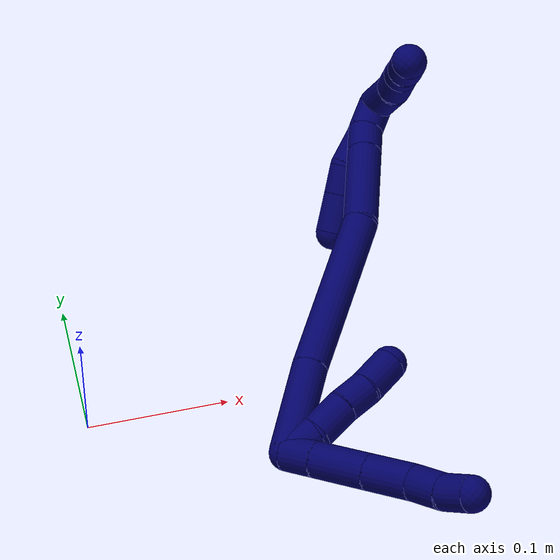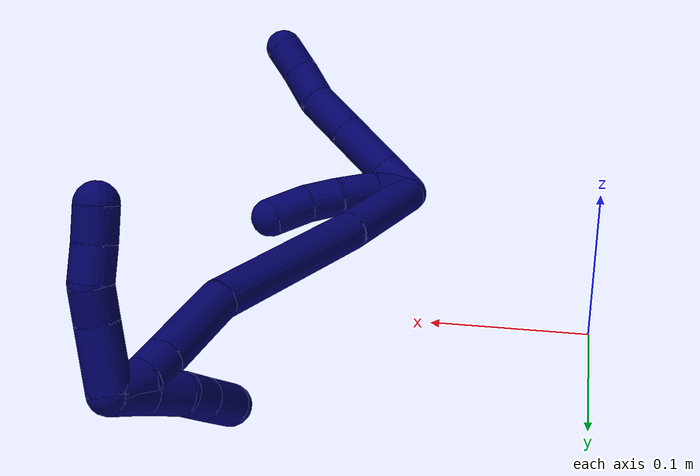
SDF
<sdf version="1.7">
 <world name="default">
  <model name="7">
   <static>0</static>
   <link name="7">
    <collision name="collision-cylinder-e_1_2_8">
     <pose>-0.005884 -0.009418 0.004696 1.10828 -0.50981 -0.319743</pose>
     <geometry><cylinder><radius>0.0125</radius><length>0.024115</length></cylinder></geometry>
     <surface>
      <friction><ode><mu>1.16</mu><mu2>1.16</mu2><slip1>0</slip1><slip2>0</slip2></ode></friction>
      <contact><ode><kp>1e+06</kp><kd>1</kd><max_vel>0</max_vel><min_depth>0.001</min_depth></ode></contact>
     </surface>
    </collision>
    <visual name="visual-cylinder-e_1_2_8">
     <pose>-0.005884 -0.009418 0.004696 1.10828 -0.50981 -0.319743</pose>
     <geometry><cylinder><radius>0.0125</radius><length>0.024115</length></cylinder></geometry>
     <material><ambient>0.003922 0 0.403922 1</ambient></material>
    </visual>
    <collision name="collision-cylinder-e_2_8_9">
     <pose>-0.021703 -0.035291 0.017568 1.10963 -0.49567 -0.311103</pose>
     <geometry><cylinder><radius>0.0125</radius><length>0.041774</length></cylinder></geometry>
     <surface>
      <friction><ode><mu>1.16</mu><mu2>1.16</mu2><slip1>0</slip1><slip2>0</slip2></ode></friction>
      <contact><ode><kp>1e+06</kp><kd>1</kd><max_vel>0</max_vel><min_depth>0.001</min_depth></ode></contact>
     </surface>
    </collision>
    <visual name="visual-cylinder-e_2_8_9">
     <pose>-0.021703 -0.035291 0.017568 1.10963 -0.49567 -0.311103</pose>
     <geometry><cylinder><radius>0.0125</radius><length>0.041774</length></cylinder></geometry>
     <material><ambient>0.003922 0 0.403922 1</ambient></material>
    </visual>
    <collision name="collision-cylinder-e_3_9_10">
     <pose>-0.039943 -0.065477 0.032586 1.10857 -0.496207 -0.311089</pose>
     <geometry><cylinder><radius>0.0125</radius><length>0.034894</length></cylinder></geometry>
     <surface>
      <friction><ode><mu>1.16</mu><mu2>1.16</mu2><slip1>0</slip1><slip2>0</slip2></ode></friction>
      <contact><ode><kp>1e+06</kp><kd>1</kd><max_vel>0</max_vel><min_depth>0.001</min_depth></ode></contact>
     </surface>
    </collision>
    <visual name="visual-cylinder-e_3_9_10">
     <pose>-0.039943 -0.065477 0.032586 1.10857 -0.496207 -0.311089</pose>
     <geometry><cylinder><radius>0.0125</radius><length>0.034894</length></cylinder></geometry>
     <material><ambient>0.003922 0 0.403922 1</ambient></material>
    </visual>
    <collision name="collision-cylinder-e_4_10_11">
     <pose>-0.05671 -0.088568 0.043128 1.19424 -0.699093 -0.48589</pose>
     <geometry><cylinder><radius>0.0125</radius><length>0.026293</length></cylinder></geometry>
     <surface>
      <friction><ode><mu>1.16</mu><mu2>1.16</mu2><slip1>0</slip1><slip2>0</slip2></ode></friction>
      <contact><ode><kp>1e+06</kp><kd>1</kd><max_vel>0</max_vel><min_depth>0.001</min_depth></ode></contact>
     </surface>
    </collision>
    <visual name="visual-cylinder-e_4_10_11">
     <pose>-0.05671 -0.088568 0.043128 1.19424 -0.699093 -0.48589</pose>
     <geometry><cylinder><radius>0.0125</radius><length>0.026293</length></cylinder></geometry>
     <material><ambient>0.003922 0 0.403922 1</ambient></material>
    </visual>
    <collision name="collision-cylinder-e_5_11_6">
     <pose>-0.072663 -0.104983 0.051869 0.950562 -0.71254 -0.378455</pose>
     <geometry><cylinder><radius>0.0125</radius><length>0.022924</length></cylinder></geometry>
     <surface>
      <friction><ode><mu>1.16</mu><mu2>1.16</mu2><slip1>0</slip1><slip2>0</slip2></ode></friction>
      <contact><ode><kp>1e+06</kp><kd>1</kd><max_vel>0</max_vel><min_depth>0.001</min_depth></ode></contact>
     </surface>
    </collision>
    <visual name="visual-cylinder-e_5_11_6">
     <pose>-0.072663 -0.104983 0.051869 0.950562 -0.71254 -0.378455</pose>
     <geometry><cylinder><radius>0.0125</radius><length>0.022924</length></cylinder></geometry>
     <material><ambient>0.003922 0 0.403922 1</ambient></material>
    </visual>
    <collision name="collision-cylinder-e_1_2_12">
     <pose>0.001736 -0.003031 0.011443 0.258939 0.14565 0.018996</pose>
     <geometry><cylinder><radius>0.0125</radius><length>0.023929</length></cylinder></geometry>
     <surface>
      <friction><ode><mu>1.16</mu><mu2>1.16</mu2><slip1>0</slip1><slip2>0</slip2></ode></friction>
      <contact><ode><kp>1e+06</kp><kd>1</kd><max_vel>0</max_vel><min_depth>0.001</min_depth></ode></contact>
     </surface>
    </collision>
    <visual name="visual-cylinder-e_1_2_12">
     <pose>0.001736 -0.003031 0.011443 0.258939 0.14565 0.018996</pose>
     <geometry><cylinder><radius>0.0125</radius><length>0.023929</length></cylinder></geometry>
     <material><ambient>0.003922 0 0.403922 1</ambient></material>
    </visual>
    <collision name="collision-cylinder-e_2_12_13">
     <pose>0.007971 -0.006863 0.03548 0.06353 0.342389 0.010987</pose>
     <geometry><cylinder><radius>0.0125</radius><length>0.026793</length></cylinder></geometry>
     <surface>
      <friction><ode><mu>1.16</mu><mu2>1.16</mu2><slip1>0</slip1><slip2>0</slip2></ode></friction>
      <contact><ode><kp>1e+06</kp><kd>1</kd><max_vel>0</max_vel><min_depth>0.001</min_depth></ode></contact>
     </surface>
    </collision>
    <visual name="visual-cylinder-e_2_12_13">
     <pose>0.007971 -0.006863 0.03548 0.06353 0.342389 0.010987</pose>
     <geometry><cylinder><radius>0.0125</radius><length>0.026793</length></cylinder></geometry>
     <material><ambient>0.003922 0 0.403922 1</ambient></material>
    </visual>
    <collision name="collision-cylinder-e_3_13_14">
     <pose>0.016912 -0.009349 0.057992 0.168184 0.415903 0.035567</pose>
     <geometry><cylinder><radius>0.0125</radius><length>0.021999</length></cylinder></geometry>
     <surface>
      <friction><ode><mu>1.16</mu><mu2>1.16</mu2><slip1>0</slip1><slip2>0</slip2></ode></friction>
      <contact><ode><kp>1e+06</kp><kd>1</kd><max_vel>0</max_vel><min_depth>0.001</min_depth></ode></contact>
     </surface>
    </collision>
    <visual name="visual-cylinder-e_3_13_14">
     <pose>0.016912 -0.009349 0.057992 0.168184 0.415903 0.035567</pose>
     <geometry><cylinder><radius>0.0125</radius><length>0.021999</length></cylinder></geometry>
     <material><ambient>0.003922 0 0.403922 1</ambient></material>
    </visual>
    <collision name="collision-cylinder-e_4_14_5">
     <pose>0.028167 -0.01129 0.079727 0.021766 0.522798 0.005823</pose>
     <geometry><cylinder><radius>0.0125</radius><length>0.02728</length></cylinder></geometry>
     <surface>
      <friction><ode><mu>1.16</mu><mu2>1.16</mu2><slip1>0</slip1><slip2>0</slip2></ode></friction>
      <contact><ode><kp>1e+06</kp><kd>1</kd><max_vel>0</max_vel><min_depth>0.001</min_depth></ode></contact>
     </surface>
    </collision>
    <visual name="visual-cylinder-e_4_14_5">
     <pose>0.028167 -0.01129 0.079727 0.021766 0.522798 0.005823</pose>
     <geometry><cylinder><radius>0.0125</radius><length>0.02728</length></cylinder></geometry>
     <material><ambient>0.003922 0 0.403922 1</ambient></material>
    </visual>
    <collision name="collision-cylinder-e_1_2_15">
     <pose>0.01545 0.014047 0.027363 -0.474286 0.465502 -0.114459</pose>
     <geometry><cylinder><radius>0.0125</radius><length>0.068841</length></cylinder></geometry>
     <surface>
      <friction><ode><mu>1.16</mu><mu2>1.16</mu2><slip1>0</slip1><slip2>0</slip2></ode></friction>
      <contact><ode><kp>1e+06</kp><kd>1</kd><max_vel>0</max_vel><min_depth>0.001</min_depth></ode></contact>
     </surface>
    </collision>
    <visual name="visual-cylinder-e_1_2_15">
     <pose>0.01545 0.014047 0.027363 -0.474286 0.465502 -0.114459</pose>
     <geometry><cylinder><radius>0.0125</radius><length>0.068841</length></cylinder></geometry>
     <material><ambient>0.003922 0 0.403922 1</ambient></material>
    </visual>
    <collision name="collision-cylinder-e_2_15_16">
     <pose>0.057004 0.049662 0.106133 -0.39724 0.437914 -0.089517</pose>
     <geometry><cylinder><radius>0.0125</radius><length>0.123113</length></cylinder></geometry>
     <surface>
      <friction><ode><mu>1.16</mu><mu2>1.16</mu2><slip1>0</slip1><slip2>0</slip2></ode></friction>
      <contact><ode><kp>1e+06</kp><kd>1</kd><max_vel>0</max_vel><min_depth>0.001</min_depth></ode></contact>
     </surface>
    </collision>
    <visual name="visual-cylinder-e_2_15_16">
     <pose>0.057004 0.049662 0.106133 -0.39724 0.437914 -0.089517</pose>
     <geometry><cylinder><radius>0.0125</radius><length>0.123113</length></cylinder></geometry>
     <material><ambient>0.003922 0 0.403922 1</ambient></material>
    </visual>
    <collision name="collision-cylinder-e_3_16_17">
     <pose>0.099397 0.088216 0.179133 -0.666532 0.535205 -0.189262</pose>
     <geometry><cylinder><radius>0.0125</radius><length>0.063881</length></cylinder></geometry>
     <surface>
      <friction><ode><mu>1.16</mu><mu2>1.16</mu2><slip1>0</slip1><slip2>0</slip2></ode></friction>
      <contact><ode><kp>1e+06</kp><kd>1</kd><max_vel>0</max_vel><min_depth>0.001</min_depth></ode></contact>
     </surface>
    </collision>
    <visual name="visual-cylinder-e_3_16_17">
     <pose>0.099397 0.088216 0.179133 -0.666532 0.535205 -0.189262</pose>
     <geometry><cylinder><radius>0.0125</radius><length>0.063881</length></cylinder></geometry>
     <material><ambient>0.003922 0 0.403922 1</ambient></material>
    </visual>
    <collision name="collision-cylinder-e_4_17_18">
     <pose>0.12096 0.110711 0.207725 -0.666963 0.534524 -0.189142</pose>
     <geometry><cylinder><radius>0.0125</radius><length>0.0207</length></cylinder></geometry>
     <surface>
      <friction><ode><mu>1.16</mu><mu2>1.16</mu2><slip1>0</slip1><slip2>0</slip2></ode></friction>
      <contact><ode><kp>1e+06</kp><kd>1</kd><max_vel>0</max_vel><min_depth>0.001</min_depth></ode></contact>
     </surface>
    </collision>
    <visual name="visual-cylinder-e_4_17_18">
     <pose>0.12096 0.110711 0.207725 -0.666963 0.534524 -0.189142</pose>
     <geometry><cylinder><radius>0.0125</radius><length>0.0207</length></cylinder></geometry>
     <material><ambient>0.003922 0 0.403922 1</ambient></material>
    </visual>
    <collision name="collision-cylinder-e_5_18_1">
     <pose>0.130322 0.120038 0.225036 -0.354465 0.356065 -0.064435</pose>
     <geometry><cylinder><radius>0.0125</radius><length>0.023465</length></cylinder></geometry>
     <surface>
      <friction><ode><mu>1.16</mu><mu2>1.16</mu2><slip1>0</slip1><slip2>0</slip2></ode></friction>
      <contact><ode><kp>1e+06</kp><kd>1</kd><max_vel>0</max_vel><min_depth>0.001</min_depth></ode></contact>
     </surface>
    </collision>
    <visual name="visual-cylinder-e_5_18_1">
     <pose>0.130322 0.120038 0.225036 -0.354465 0.356065 -0.064435</pose>
     <geometry><cylinder><radius>0.0125</radius><length>0.023465</length></cylinder></geometry>
     <material><ambient>0.003922 0 0.403922 1</ambient></material>
    </visual>
    <collision name="collision-cylinder-e_1_1_19">
     <pose>0.133789 0.119683 0.223072 2.81404 -0.04799 -0.28843</pose>
     <geometry><cylinder><radius>0.0125</radius><length>0.025963</length></cylinder></geometry>
     <surface>
      <friction><ode><mu>1.16</mu><mu2>1.16</mu2><slip1>0</slip1><slip2>0</slip2></ode></friction>
      <contact><ode><kp>1e+06</kp><kd>1</kd><max_vel>0</max_vel><min_depth>0.001</min_depth></ode></contact>
     </surface>
    </collision>
    <visual name="visual-cylinder-e_1_1_19">
     <pose>0.133789 0.119683 0.223072 2.81404 -0.04799 -0.28843</pose>
     <geometry><cylinder><radius>0.0125</radius><length>0.025963</length></cylinder></geometry>
     <material><ambient>0.003922 0 0.403922 1</ambient></material>
    </visual>
    <collision name="collision-cylinder-e_2_19_20">
     <pose>0.132793 0.112819 0.198837 2.92014 -0.030484 -0.272514</pose>
     <geometry><cylinder><radius>0.0125</radius><length>0.024524</length></cylinder></geometry>
     <surface>
      <friction><ode><mu>1.16</mu><mu2>1.16</mu2><slip1>0</slip1><slip2>0</slip2></ode></friction>
      <contact><ode><kp>1e+06</kp><kd>1</kd><max_vel>0</max_vel><min_depth>0.001</min_depth></ode></contact>
     </surface>
    </collision>
    <visual name="visual-cylinder-e_2_19_20">
     <pose>0.132793 0.112819 0.198837 2.92014 -0.030484 -0.272514</pose>
     <geometry><cylinder><radius>0.0125</radius><length>0.024524</length></cylinder></geometry>
     <material><ambient>0.003922 0 0.403922 1</ambient></material>
    </visual>
    <collision name="collision-cylinder-e_3_20_21">
     <pose>0.134081 0.105191 0.17758 2.65366 0.156587 0.610638</pose>
     <geometry><cylinder><radius>0.0125</radius><length>0.021318</length></cylinder></geometry>
     <surface>
      <friction><ode><mu>1.16</mu><mu2>1.16</mu2><slip1>0</slip1><slip2>0</slip2></ode></friction>
      <contact><ode><kp>1e+06</kp><kd>1</kd><max_vel>0</max_vel><min_depth>0.001</min_depth></ode></contact>
     </surface>
    </collision>
    <visual name="visual-cylinder-e_3_20_21">
     <pose>0.134081 0.105191 0.17758 2.65366 0.156587 0.610638</pose>
     <geometry><cylinder><radius>0.0125</radius><length>0.021318</length></cylinder></geometry>
     <material><ambient>0.003922 0 0.403922 1</ambient></material>
    </visual>
    <collision name="collision-cylinder-e_4_21_4">
     <pose>0.137799 0.093827 0.155903 2.66258 0.14629 0.583045</pose>
     <geometry><cylinder><radius>0.0125</radius><length>0.028194</length></cylinder></geometry>
     <surface>
      <friction><ode><mu>1.16</mu><mu2>1.16</mu2><slip1>0</slip1><slip2>0</slip2></ode></friction>
      <contact><ode><kp>1e+06</kp><kd>1</kd><max_vel>0</max_vel><min_depth>0.001</min_depth></ode></contact>
     </surface>
    </collision>
    <visual name="visual-cylinder-e_4_21_4">
     <pose>0.137799 0.093827 0.155903 2.66258 0.14629 0.583045</pose>
     <geometry><cylinder><radius>0.0125</radius><length>0.028194</length></cylinder></geometry>
     <material><ambient>0.003922 0 0.403922 1</ambient></material>
    </visual>
    <collision name="collision-cylinder-e_1_1_22">
     <pose>0.117059 0.120566 0.241761 0.473877 -1.17718 -0.319626</pose>
     <geometry><cylinder><radius>0.0125</radius><length>0.037579</length></cylinder></geometry>
     <surface>
      <friction><ode><mu>1.16</mu><mu2>1.16</mu2><slip1>0</slip1><slip2>0</slip2></ode></friction>
      <contact><ode><kp>1e+06</kp><kd>1</kd><max_vel>0</max_vel><min_depth>0.001</min_depth></ode></contact>
     </surface>
    </collision>
    <visual name="visual-cylinder-e_1_1_22">
     <pose>0.117059 0.120566 0.241761 0.473877 -1.17718 -0.319626</pose>
     <geometry><cylinder><radius>0.0125</radius><length>0.037579</length></cylinder></geometry>
     <material><ambient>0.003922 0 0.403922 1</ambient></material>
    </visual>
    <collision name="collision-cylinder-e_2_22_23">
     <pose>0.090131 0.117302 0.252298 -0.006001 -1.16404 0.003949</pose>
     <geometry><cylinder><radius>0.0125</radius><length>0.020852</length></cylinder></geometry>
     <surface>
      <friction><ode><mu>1.16</mu><mu2>1.16</mu2><slip1>0</slip1><slip2>0</slip2></ode></friction>
      <contact><ode><kp>1e+06</kp><kd>1</kd><max_vel>0</max_vel><min_depth>0.001</min_depth></ode></contact>
     </surface>
    </collision>
    <visual name="visual-cylinder-e_2_22_23">
     <pose>0.090131 0.117302 0.252298 -0.006001 -1.16404 0.003949</pose>
     <geometry><cylinder><radius>0.0125</radius><length>0.020852</length></cylinder></geometry>
     <material><ambient>0.003922 0 0.403922 1</ambient></material>
    </visual>
    <collision name="collision-cylinder-e_3_23_24">
     <pose>0.07003 0.116181 0.257446 0.842074 -1.42592 -0.738882</pose>
     <geometry><cylinder><radius>0.0125</radius><length>0.021276</length></cylinder></geometry>
     <surface>
      <friction><ode><mu>1.16</mu><mu2>1.16</mu2><slip1>0</slip1><slip2>0</slip2></ode></friction>
      <contact><ode><kp>1e+06</kp><kd>1</kd><max_vel>0</max_vel><min_depth>0.001</min_depth></ode></contact>
     </surface>
    </collision>
    <visual name="visual-cylinder-e_3_23_24">
     <pose>0.07003 0.116181 0.257446 0.842074 -1.42592 -0.738882</pose>
     <geometry><cylinder><radius>0.0125</radius><length>0.021276</length></cylinder></geometry>
     <material><ambient>0.003922 0 0.403922 1</ambient></material>
    </visual>
    <collision name="collision-cylinder-e_4_24_3">
     <pose>0.049508 0.114513 0.260135 0.303492 -1.39779 -0.255629</pose>
     <geometry><cylinder><radius>0.0125</radius><length>0.020293</length></cylinder></geometry>
     <surface>
      <friction><ode><mu>1.16</mu><mu2>1.16</mu2><slip1>0</slip1><slip2>0</slip2></ode></friction>
      <contact><ode><kp>1e+06</kp><kd>1</kd><max_vel>0</max_vel><min_depth>0.001</min_depth></ode></contact>
     </surface>
    </collision>
    <visual name="visual-cylinder-e_4_24_3">
     <pose>0.049508 0.114513 0.260135 0.303492 -1.39779 -0.255629</pose>
     <geometry><cylinder><radius>0.0125</radius><length>0.020293</length></cylinder></geometry>
     <material><ambient>0.003922 0 0.403922 1</ambient></material>
    </visual>
    <collision name="collision-sphere-3">
     <pose>0.039513 0.113991 0.261802 0 -0 0</pose>
     <geometry><sphere><radius>0.0125</radius></sphere></geometry>
     <surface>
      <friction><ode><mu>1.16</mu><mu2>1.16</mu2><slip1>0</slip1><slip2>0</slip2></ode></friction>
      <contact><ode><kp>1e+06</kp><kd>1</kd><max_vel>0</max_vel><min_depth>0.001</min_depth></ode></contact>
     </surface>
    </collision>
    <visual name="visual-sphere-3">
     <pose>0.039513 0.113991 0.261802 0 -0 0</pose>
     <geometry><sphere><radius>0.0125</radius></sphere></geometry>
     <material><ambient>0.003922 0 0.403922 1</ambient></material>
    </visual>
    <collision name="collision-sphere-24">
     <pose>0.059503 0.115035 0.258469 0 -0 0</pose>
     <geometry><sphere><radius>0.0125</radius></sphere></geometry>
     <surface>
      <friction><ode><mu>1.16</mu><mu2>1.16</mu2><slip1>0</slip1><slip2>0</slip2></ode></friction>
      <contact><ode><kp>1e+06</kp><kd>1</kd><max_vel>0</max_vel><min_depth>0.001</min_depth></ode></contact>
     </surface>
    </collision>
    <visual name="visual-sphere-24">
     <pose>0.059503 0.115035 0.258469 0 -0 0</pose>
     <geometry><sphere><radius>0.0125</radius></sphere></geometry>
     <material><ambient>0.003922 0 0.403922 1</ambient></material>
    </visual>
    <collision name="collision-sphere-23">
     <pose>0.080556 0.117327 0.256423 0 -0 0</pose>
     <geometry><sphere><radius>0.0125</radius></sphere></geometry>
     <surface>
      <friction><ode><mu>1.16</mu><mu2>1.16</mu2><slip1>0</slip1><slip2>0</slip2></ode></friction>
      <contact><ode><kp>1e+06</kp><kd>1</kd><max_vel>0</max_vel><min_depth>0.001</min_depth></ode></contact>
     </surface>
    </collision>
    <visual name="visual-sphere-23">
     <pose>0.080556 0.117327 0.256423 0 -0 0</pose>
     <geometry><sphere><radius>0.0125</radius></sphere></geometry>
     <material><ambient>0.003922 0 0.403922 1</ambient></material>
    </visual>
    <collision name="collision-sphere-22">
     <pose>0.099707 0.117277 0.248173 0 -0 0</pose>
     <geometry><sphere><radius>0.0125</radius></sphere></geometry>
     <surface>
      <friction><ode><mu>1.16</mu><mu2>1.16</mu2><slip1>0</slip1><slip2>0</slip2></ode></friction>
      <contact><ode><kp>1e+06</kp><kd>1</kd><max_vel>0</max_vel><min_depth>0.001</min_depth></ode></contact>
     </surface>
    </collision>
    <visual name="visual-sphere-22">
     <pose>0.099707 0.117277 0.248173 0 -0 0</pose>
     <geometry><sphere><radius>0.0125</radius></sphere></geometry>
     <material><ambient>0.003922 0 0.403922 1</ambient></material>
    </visual>
    <collision name="collision-sphere-4">
     <pose>0.139854 0.087399 0.143526 0 -0 0</pose>
     <geometry><sphere><radius>0.0125</radius></sphere></geometry>
     <surface>
      <friction><ode><mu>1.16</mu><mu2>1.16</mu2><slip1>0</slip1><slip2>0</slip2></ode></friction>
      <contact><ode><kp>1e+06</kp><kd>1</kd><max_vel>0</max_vel><min_depth>0.001</min_depth></ode></contact>
     </surface>
    </collision>
    <visual name="visual-sphere-4">
     <pose>0.139854 0.087399 0.143526 0 -0 0</pose>
     <geometry><sphere><radius>0.0125</radius></sphere></geometry>
     <material><ambient>0.003922 0 0.403922 1</ambient></material>
    </visual>
    <collision name="collision-sphere-21">
     <pose>0.135744 0.100255 0.168279 0 -0 0</pose>
     <geometry><sphere><radius>0.0125</radius></sphere></geometry>
     <surface>
      <friction><ode><mu>1.16</mu><mu2>1.16</mu2><slip1>0</slip1><slip2>0</slip2></ode></friction>
      <contact><ode><kp>1e+06</kp><kd>1</kd><max_vel>0</max_vel><min_depth>0.001</min_depth></ode></contact>
     </surface>
    </collision>
    <visual name="visual-sphere-21">
     <pose>0.135744 0.100255 0.168279 0 -0 0</pose>
     <geometry><sphere><radius>0.0125</radius></sphere></geometry>
     <material><ambient>0.003922 0 0.403922 1</ambient></material>
    </visual>
    <collision name="collision-sphere-20">
     <pose>0.132419 0.110127 0.18688 0 -0 0</pose>
     <geometry><sphere><radius>0.0125</radius></sphere></geometry>
     <surface>
      <friction><ode><mu>1.16</mu><mu2>1.16</mu2><slip1>0</slip1><slip2>0</slip2></ode></friction>
      <contact><ode><kp>1e+06</kp><kd>1</kd><max_vel>0</max_vel><min_depth>0.001</min_depth></ode></contact>
     </surface>
    </collision>
    <visual name="visual-sphere-20">
     <pose>0.132419 0.110127 0.18688 0 -0 0</pose>
     <geometry><sphere><radius>0.0125</radius></sphere></geometry>
     <material><ambient>0.003922 0 0.403922 1</ambient></material>
    </visual>
    <collision name="collision-sphere-6">
     <pose>-0.080157 -0.112041 0.056911 0 -0 0</pose>
     <geometry><sphere><radius>0.0125</radius></sphere></geometry>
     <surface>
      <friction><ode><mu>1.16</mu><mu2>1.16</mu2><slip1>0</slip1><slip2>0</slip2></ode></friction>
      <contact><ode><kp>1e+06</kp><kd>1</kd><max_vel>0</max_vel><min_depth>0.001</min_depth></ode></contact>
     </surface>
    </collision>
    <visual name="visual-sphere-6">
     <pose>-0.080157 -0.112041 0.056911 0 -0 0</pose>
     <geometry><sphere><radius>0.0125</radius></sphere></geometry>
     <material><ambient>0.003922 0 0.403922 1</ambient></material>
    </visual>
    <collision name="collision-sphere-11">
     <pose>-0.06517 -0.097925 0.046828 0 -0 0</pose>
     <geometry><sphere><radius>0.0125</radius></sphere></geometry>
     <surface>
      <friction><ode><mu>1.16</mu><mu2>1.16</mu2><slip1>0</slip1><slip2>0</slip2></ode></friction>
      <contact><ode><kp>1e+06</kp><kd>1</kd><max_vel>0</max_vel><min_depth>0.001</min_depth></ode></contact>
     </surface>
    </collision>
    <visual name="visual-sphere-11">
     <pose>-0.06517 -0.097925 0.046828 0 -0 0</pose>
     <geometry><sphere><radius>0.0125</radius></sphere></geometry>
     <material><ambient>0.003922 0 0.403922 1</ambient></material>
    </visual>
    <collision name="collision-sphere-10">
     <pose>-0.04825 -0.07921 0.039428 0 -0 0</pose>
     <geometry><sphere><radius>0.0125</radius></sphere></geometry>
     <surface>
      <friction><ode><mu>1.16</mu><mu2>1.16</mu2><slip1>0</slip1><slip2>0</slip2></ode></friction>
      <contact><ode><kp>1e+06</kp><kd>1</kd><max_vel>0</max_vel><min_depth>0.001</min_depth></ode></contact>
     </surface>
    </collision>
    <visual name="visual-sphere-10">
     <pose>-0.04825 -0.07921 0.039428 0 -0 0</pose>
     <geometry><sphere><radius>0.0125</radius></sphere></geometry>
     <material><ambient>0.003922 0 0.403922 1</ambient></material>
    </visual>
    <collision name="collision-sphere-9">
     <pose>-0.031637 -0.051745 0.025744 0 -0 0</pose>
     <geometry><sphere><radius>0.0125</radius></sphere></geometry>
     <surface>
      <friction><ode><mu>1.16</mu><mu2>1.16</mu2><slip1>0</slip1><slip2>0</slip2></ode></friction>
      <contact><ode><kp>1e+06</kp><kd>1</kd><max_vel>0</max_vel><min_depth>0.001</min_depth></ode></contact>
     </surface>
    </collision>
    <visual name="visual-sphere-9">
     <pose>-0.031637 -0.051745 0.025744 0 -0 0</pose>
     <geometry><sphere><radius>0.0125</radius></sphere></geometry>
     <material><ambient>0.003922 0 0.403922 1</ambient></material>
    </visual>
    <collision name="collision-sphere-2">
     <geometry><sphere><radius>0.0125</radius></sphere></geometry>
     <surface>
      <friction><ode><mu>1.16</mu><mu2>1.16</mu2><slip1>0</slip1><slip2>0</slip2></ode></friction>
      <contact><ode><kp>1e+06</kp><kd>1</kd><max_vel>0</max_vel><min_depth>0.001</min_depth></ode></contact>
     </surface>
    </collision>
    <visual name="visual-sphere-2">
     <geometry><sphere><radius>0.0125</radius></sphere></geometry>
     <material><ambient>0.003922 0 0.403922 1</ambient></material>
    </visual>
    <collision name="collision-sphere-19">
     <pose>0.133167 0.115511 0.210794 0 -0 0</pose>
     <geometry><sphere><radius>0.0125</radius></sphere></geometry>
     <surface>
      <friction><ode><mu>1.16</mu><mu2>1.16</mu2><slip1>0</slip1><slip2>0</slip2></ode></friction>
      <contact><ode><kp>1e+06</kp><kd>1</kd><max_vel>0</max_vel><min_depth>0.001</min_depth></ode></contact>
     </surface>
    </collision>
    <visual name="visual-sphere-19">
     <pose>0.133167 0.115511 0.210794 0 -0 0</pose>
     <geometry><sphere><radius>0.0125</radius></sphere></geometry>
     <material><ambient>0.003922 0 0.403922 1</ambient></material>
    </visual>
    <collision name="collision-sphere-8">
     <pose>-0.011768 -0.018837 0.009392 0 -0 0</pose>
     <geometry><sphere><radius>0.0125</radius></sphere></geometry>
     <surface>
      <friction><ode><mu>1.16</mu><mu2>1.16</mu2><slip1>0</slip1><slip2>0</slip2></ode></friction>
      <contact><ode><kp>1e+06</kp><kd>1</kd><max_vel>0</max_vel><min_depth>0.001</min_depth></ode></contact>
     </surface>
    </collision>
    <visual name="visual-sphere-8">
     <pose>-0.011768 -0.018837 0.009392 0 -0 0</pose>
     <geometry><sphere><radius>0.0125</radius></sphere></geometry>
     <material><ambient>0.003922 0 0.403922 1</ambient></material>
    </visual>
    <collision name="collision-sphere-12">
     <pose>0.003473 -0.006062 0.022886 0 -0 0</pose>
     <geometry><sphere><radius>0.0125</radius></sphere></geometry>
     <surface>
      <friction><ode><mu>1.16</mu><mu2>1.16</mu2><slip1>0</slip1><slip2>0</slip2></ode></friction>
      <contact><ode><kp>1e+06</kp><kd>1</kd><max_vel>0</max_vel><min_depth>0.001</min_depth></ode></contact>
     </surface>
    </collision>
    <visual name="visual-sphere-12">
     <pose>0.003473 -0.006062 0.022886 0 -0 0</pose>
     <geometry><sphere><radius>0.0125</radius></sphere></geometry>
     <material><ambient>0.003922 0 0.403922 1</ambient></material>
    </visual>
    <collision name="collision-sphere-13">
     <pose>0.012468 -0.007664 0.048073 0 -0 0</pose>
     <geometry><sphere><radius>0.0125</radius></sphere></geometry>
     <surface>
      <friction><ode><mu>1.16</mu><mu2>1.16</mu2><slip1>0</slip1><slip2>0</slip2></ode></friction>
      <contact><ode><kp>1e+06</kp><kd>1</kd><max_vel>0</max_vel><min_depth>0.001</min_depth></ode></contact>
     </surface>
    </collision>
    <visual name="visual-sphere-13">
     <pose>0.012468 -0.007664 0.048073 0 -0 0</pose>
     <geometry><sphere><radius>0.0125</radius></sphere></geometry>
     <material><ambient>0.003922 0 0.403922 1</ambient></material>
    </visual>
    <collision name="collision-sphere-14">
     <pose>0.021356 -0.011033 0.067912 0 -0 0</pose>
     <geometry><sphere><radius>0.0125</radius></sphere></geometry>
     <surface>
      <friction><ode><mu>1.16</mu><mu2>1.16</mu2><slip1>0</slip1><slip2>0</slip2></ode></friction>
      <contact><ode><kp>1e+06</kp><kd>1</kd><max_vel>0</max_vel><min_depth>0.001</min_depth></ode></contact>
     </surface>
    </collision>
    <visual name="visual-sphere-14">
     <pose>0.021356 -0.011033 0.067912 0 -0 0</pose>
     <geometry><sphere><radius>0.0125</radius></sphere></geometry>
     <material><ambient>0.003922 0 0.403922 1</ambient></material>
    </visual>
    <collision name="collision-sphere-5">
     <pose>0.034977 -0.011547 0.091542 0 -0 0</pose>
     <geometry><sphere><radius>0.0125</radius></sphere></geometry>
     <surface>
      <friction><ode><mu>1.16</mu><mu2>1.16</mu2><slip1>0</slip1><slip2>0</slip2></ode></friction>
      <contact><ode><kp>1e+06</kp><kd>1</kd><max_vel>0</max_vel><min_depth>0.001</min_depth></ode></contact>
     </surface>
    </collision>
    <visual name="visual-sphere-5">
     <pose>0.034977 -0.011547 0.091542 0 -0 0</pose>
     <geometry><sphere><radius>0.0125</radius></sphere></geometry>
     <material><ambient>0.003922 0 0.403922 1</ambient></material>
    </visual>
    <collision name="collision-sphere-15">
     <pose>0.030901 0.028095 0.054726 0 -0 0</pose>
     <geometry><sphere><radius>0.0125</radius></sphere></geometry>
     <surface>
      <friction><ode><mu>1.16</mu><mu2>1.16</mu2><slip1>0</slip1><slip2>0</slip2></ode></friction>
      <contact><ode><kp>1e+06</kp><kd>1</kd><max_vel>0</max_vel><min_depth>0.001</min_depth></ode></contact>
     </surface>
    </collision>
    <visual name="visual-sphere-15">
     <pose>0.030901 0.028095 0.054726 0 -0 0</pose>
     <geometry><sphere><radius>0.0125</radius></sphere></geometry>
     <material><ambient>0.003922 0 0.403922 1</ambient></material>
    </visual>
    <collision name="collision-sphere-16">
     <pose>0.083107 0.071229 0.15754 0 -0 0</pose>
     <geometry><sphere><radius>0.0125</radius></sphere></geometry>
     <surface>
      <friction><ode><mu>1.16</mu><mu2>1.16</mu2><slip1>0</slip1><slip2>0</slip2></ode></friction>
      <contact><ode><kp>1e+06</kp><kd>1</kd><max_vel>0</max_vel><min_depth>0.001</min_depth></ode></contact>
     </surface>
    </collision>
    <visual name="visual-sphere-16">
     <pose>0.083107 0.071229 0.15754 0 -0 0</pose>
     <geometry><sphere><radius>0.0125</radius></sphere></geometry>
     <material><ambient>0.003922 0 0.403922 1</ambient></material>
    </visual>
    <collision name="collision-sphere-17">
     <pose>0.115687 0.105202 0.200727 0 -0 0</pose>
     <geometry><sphere><radius>0.0125</radius></sphere></geometry>
     <surface>
      <friction><ode><mu>1.16</mu><mu2>1.16</mu2><slip1>0</slip1><slip2>0</slip2></ode></friction>
      <contact><ode><kp>1e+06</kp><kd>1</kd><max_vel>0</max_vel><min_depth>0.001</min_depth></ode></contact>
     </surface>
    </collision>
    <visual name="visual-sphere-17">
     <pose>0.115687 0.105202 0.200727 0 -0 0</pose>
     <geometry><sphere><radius>0.0125</radius></sphere></geometry>
     <material><ambient>0.003922 0 0.403922 1</ambient></material>
    </visual>
    <collision name="collision-sphere-18">
     <pose>0.126232 0.116221 0.214723 0 -0 0</pose>
     <geometry><sphere><radius>0.0125</radius></sphere></geometry>
     <surface>
      <friction><ode><mu>1.16</mu><mu2>1.16</mu2><slip1>0</slip1><slip2>0</slip2></ode></friction>
      <contact><ode><kp>1e+06</kp><kd>1</kd><max_vel>0</max_vel><min_depth>0.001</min_depth></ode></contact>
     </surface>
    </collision>
    <visual name="visual-sphere-18">
     <pose>0.126232 0.116221 0.214723 0 -0 0</pose>
     <geometry><sphere><radius>0.0125</radius></sphere></geometry>
     <material><ambient>0.003922 0 0.403922 1</ambient></material>
    </visual>
    <collision name="collision-sphere-1">
     <pose>0.134412 0.123854 0.235349 0 -0 0</pose>
     <geometry><sphere><radius>0.0125</radius></sphere></geometry>
     <surface>
      <friction><ode><mu>1.16</mu><mu2>1.16</mu2><slip1>0</slip1><slip2>0</slip2></ode></friction>
      <contact><ode><kp>1e+06</kp><kd>1</kd><max_vel>0</max_vel><min_depth>0.001</min_depth></ode></contact>
     </surface>
    </collision>
    <visual name="visual-sphere-1">
     <pose>0.134412 0.123854 0.235349 0 -0 0</pose>
     <geometry><sphere><radius>0.0125</radius></sphere></geometry>
     <material><ambient>0.003922 0 0.403922 1</ambient></material>
    </visual>
    <inertial>
     <pose>0.050715 0.041157 0.118543 0 -0 0</pose>
     <mass>0.75</mass>
     <inertia>
      <ixx>0.000205</ixx>
      <ixy>0</ixy>
      <ixz>0</ixz>
      <iyy>0.000194</iyy>
      <iyz>0</iyz>
      <izz>-0.000117</izz>
     </inertia>
    </inertial>
   </link>
   <pose>0.123879 -0.080378 0.048985 0.607518 1.04414 1.23536</pose>
  </model>
 </world>
</sdf>
